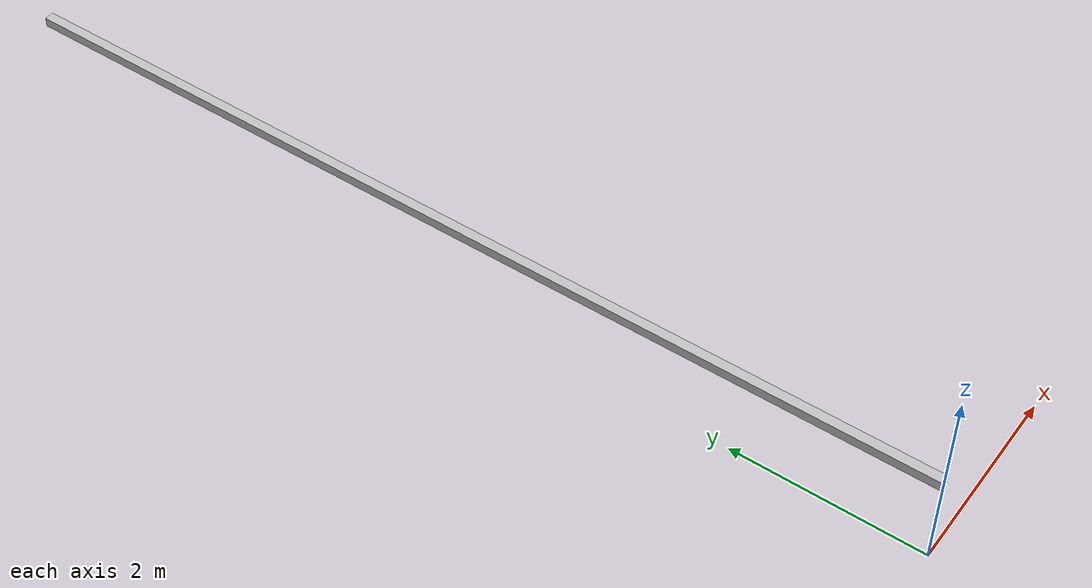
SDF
<?xml version="1.0" ?>
<sdf version="1.5">
  <world name="default">
    <model name ='model'>
      <pose>0 0 1 0 0 0</pose>
      <link name='link'>
        <inertial>
          <mass>1.0</mass>
          <inertia>
            <ixx>8.33416667</ixx>
            <ixy>0</ixy>
            <ixz>0</ixz>
            <iyy>0.00166667</iyy>
            <iyz>0</iyz>
            <izz>8.33416667</izz>
          </inertia>
        </inertial>
        <pose>0 5 0 0 0 0</pose>
        <collision name='contact_collision'>
          <geometry>
            <box><size>0.1 10 0.1</size></box>
          </geometry>
        </collision>
        <visual name='visual'>
          <geometry>
            <box><size>0.1 10 0.1</size></box>
          </geometry>
        </visual>
        <sensor name='altimeter' type='altimeter'>
          <pose>0 5 0 0 0 0</pose>
          <always_on>true</always_on>
          <altimeter>
          </altimeter>
        </sensor>
      </link>
      <joint name="joint" type="revolute">
        <pose>0 -5 0 0 0 0</pose>
        <parent>world</parent>
        <child>link</child>
        <axis>
          <xyz>1 0 0</xyz>
        </axis>
      </joint>
    </model>
  </world>
</sdf>
